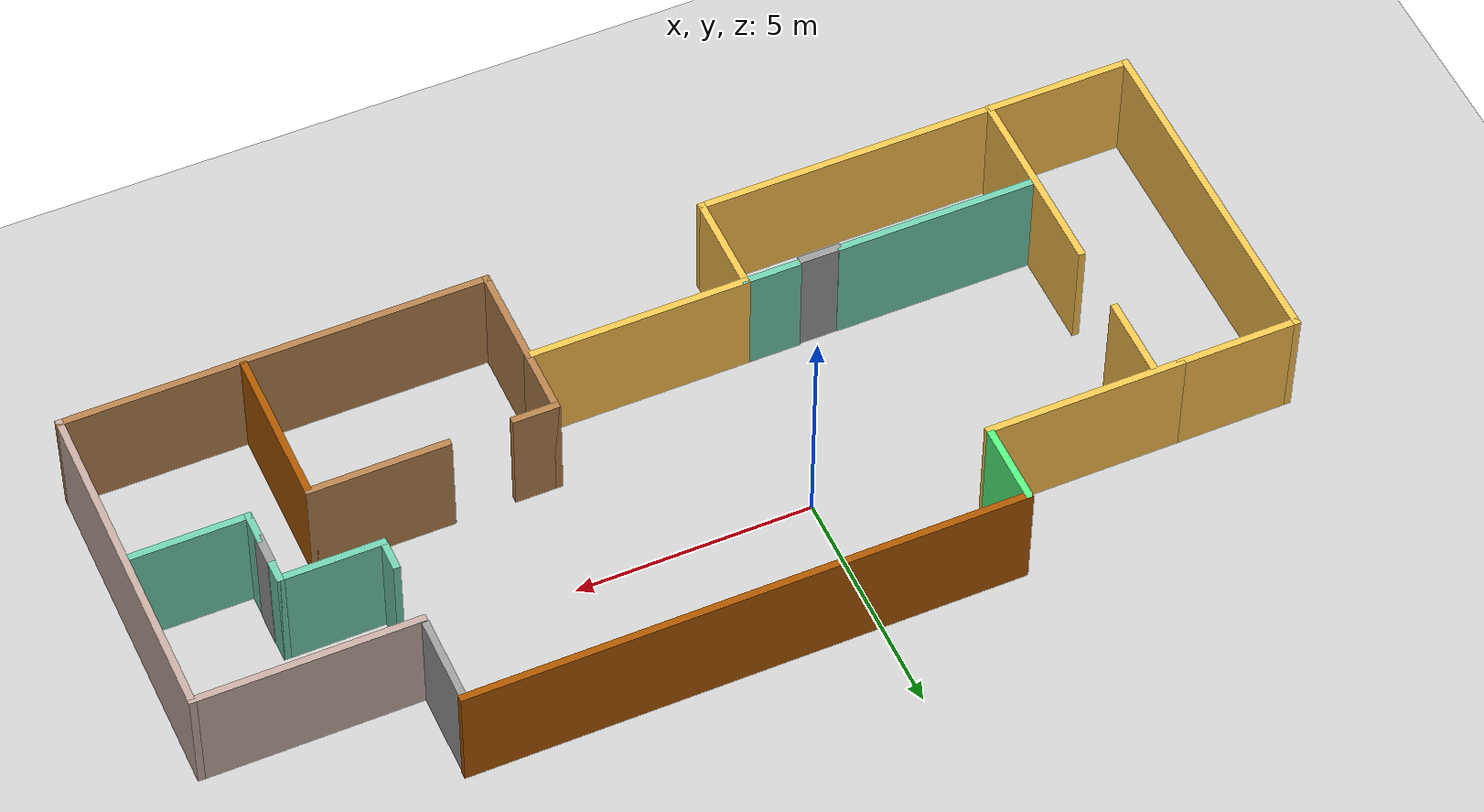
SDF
<sdf version="1.6">
 <world name="default">
  <model name="ground_plane">
   <static>1</static>
   <link name="link">
    <collision name="collision">
     <geometry><plane><normal>0 0 1</normal><size>100 100</size></plane></geometry>
     <surface><friction><ode><mu>100</mu><mu2>50</mu2></ode></friction></surface>
    </collision>
    <visual name="visual">
     <cast_shadows>0</cast_shadows>
     <geometry><plane><normal>0 0 1</normal><size>100 100</size></plane></geometry>
     <material>
      <script><uri>file://media/materials/scripts/gazebo.material</uri><name>Gazebo/Grey</name></script>
     </material>
    </visual>
   </link>
  </model>
  <model name="Building">
   <model name="Udacity_Office">
    <link name="Door_0">
     <pose>-3.67047 -1.60909 0 0 -0 0</pose>
     <visual name="Door_0_Visual">
      <pose>0 0 1.25 0 -0 0</pose>
      <geometry><box><size>0.9 0.17 2.5</size></box></geometry>
      <material>
       <script><uri>file://media/materials/scripts/gazebo.material</uri><name>Gazebo/Grey</name></script>
       <shader type="pixel"/>
       <ambient>0.3 0.3 0.3 1</ambient>
       <diffuse>0.7 0.7 0.7 1</diffuse>
       <specular>0.01 0.01 0.01 1</specular>
       <emissive>0 0 0 1</emissive>
      </material>
     </visual>
     <collision name="Door_0_Collision">
      <pose>0 0 1.25 0 -0 0</pose>
      <geometry><box><size>0.9 0.17 2.5</size></box></geometry>
      <surface>
       <friction>
        <ode><mu>1</mu><mu2>1</mu2><fdir1>0 0 0</fdir1><slip1>0</slip1><slip2>0</slip2></ode>
        <torsional>
         <coefficient>1</coefficient>
         <patch_radius>0</patch_radius>
         <surface_radius>0</surface_radius>
         <use_patch_radius>1</use_patch_radius>
         <ode><slip>0</slip></ode>
        </torsional>
       </friction>
       <bounce><restitution_coefficient>0</restitution_coefficient><threshold>1e+06</threshold></bounce>
       <contact>
        <collide_without_contact>0</collide_without_contact>
        <collide_without_contact_bitmask>1</collide_without_contact_bitmask>
        <collide_bitmask>1</collide_bitmask>
        <ode>
         <soft_cfm>0</soft_cfm>
         <soft_erp>0.2</soft_erp>
         <kp>1e+13</kp>
         <kd>1</kd>
         <max_vel>0.01</max_vel>
         <min_depth>0</min_depth>
        </ode>
        <bullet>
         <split_impulse>1</split_impulse>
         <split_impulse_penetration_threshold>-0.01</split_impulse_penetration_threshold>
         <soft_cfm>0</soft_cfm>
         <soft_erp>0.2</soft_erp>
         <kp>1e+13</kp>
         <kd>1</kd>
        </bullet>
       </contact>
      </surface>
     </collision>
    </link>
    <link name="Door_1">
     <pose>8.90051 0.744202 0 0 0 -1.5708</pose>
     <visual name="Door_1_Visual">
      <pose>0 0 1.25 0 -0 0</pose>
      <geometry><box><size>0.7 0.17 2.5</size></box></geometry>
      <material>
       <script><uri>file://media/materials/scripts/gazebo.material</uri><name>Gazebo/Grey</name></script>
       <shader type="pixel"/>
       <ambient>0.3 0.3 0.3 1</ambient>
       <diffuse>0.7 0.7 0.7 1</diffuse>
       <specular>0.01 0.01 0.01 1</specular>
       <emissive>0 0 0 1</emissive>
      </material>
     </visual>
     <collision name="Door_1_Collision">
      <pose>0 0 1.25 0 -0 0</pose>
      <geometry><box><size>0.7 0.17 2.5</size></box></geometry>
      <surface>
       <friction>
        <ode><mu>1</mu><mu2>1</mu2><fdir1>0 0 0</fdir1><slip1>0</slip1><slip2>0</slip2></ode>
        <torsional>
         <coefficient>1</coefficient>
         <patch_radius>0</patch_radius>
         <surface_radius>0</surface_radius>
         <use_patch_radius>1</use_patch_radius>
         <ode><slip>0</slip></ode>
        </torsional>
       </friction>
       <bounce><restitution_coefficient>0</restitution_coefficient><threshold>1e+06</threshold></bounce>
       <contact>
        <collide_without_contact>0</collide_without_contact>
        <collide_without_contact_bitmask>1</collide_without_contact_bitmask>
        <collide_bitmask>1</collide_bitmask>
        <ode>
         <soft_cfm>0</soft_cfm>
         <soft_erp>0.2</soft_erp>
         <kp>1e+13</kp>
         <kd>1</kd>
         <max_vel>0.01</max_vel>
         <min_depth>0</min_depth>
        </ode>
        <bullet>
         <split_impulse>1</split_impulse>
         <split_impulse_penetration_threshold>-0.01</split_impulse_penetration_threshold>
         <soft_cfm>0</soft_cfm>
         <soft_erp>0.2</soft_erp>
         <kp>1e+13</kp>
         <kd>1</kd>
        </bullet>
       </contact>
      </surface>
     </collision>
    </link>
    <link name="Wall_0">
     <pose>-6.85 3.68078 0 0 -0 0</pose>
     <visual name="Wall_0_Visual">
      <pose>0 0 1.25 0 -0 0</pose>
      <geometry><box><size>4.25 0.15 2.5</size></box></geometry>
      <material>
       <script><uri>file://media/materials/scripts/gazebo.material</uri><name>Gazebo/Grey</name></script>
       <ambient>1 0.764706 0.305882 1</ambient>
       <shader type="pixel"/>
       <diffuse>0.7 0.7 0.7 1</diffuse>
       <specular>0.01 0.01 0.01 1</specular>
       <emissive>0 0 0 1</emissive>
      </material>
      <meta><layer>0</layer></meta>
     </visual>
     <collision name="Wall_0_Collision">
      <pose>0 0 1.25 0 -0 0</pose>
      <geometry><box><size>4.25 0.15 2.5</size></box></geometry>
      <surface>
       <friction>
        <ode><mu>1</mu><mu2>1</mu2><fdir1>0 0 0</fdir1><slip1>0</slip1><slip2>0</slip2></ode>
        <torsional>
         <coefficient>1</coefficient>
         <patch_radius>0</patch_radius>
         <surface_radius>0</surface_radius>
         <use_patch_radius>1</use_patch_radius>
         <ode><slip>0</slip></ode>
        </torsional>
       </friction>
       <bounce><restitution_coefficient>0</restitution_coefficient><threshold>1e+06</threshold></bounce>
       <contact>
        <collide_without_contact>0</collide_without_contact>
        <collide_without_contact_bitmask>1</collide_without_contact_bitmask>
        <collide_bitmask>1</collide_bitmask>
        <ode>
         <soft_cfm>0</soft_cfm>
         <soft_erp>0.2</soft_erp>
         <kp>1e+13</kp>
         <kd>1</kd>
         <max_vel>0.01</max_vel>
         <min_depth>0</min_depth>
        </ode>
        <bullet>
         <split_impulse>1</split_impulse>
         <split_impulse_penetration_threshold>-0.01</split_impulse_penetration_threshold>
         <soft_cfm>0</soft_cfm>
         <soft_erp>0.2</soft_erp>
         <kp>1e+13</kp>
         <kd>1</kd>
        </bullet>
       </contact>
      </surface>
     </collision>
    </link>
    <link name="Wall_1">
     <pose>-4.79999 4.59263 0 0 0 -1.5708</pose>
     <visual name="Wall_1_Visual">
      <pose>0 0 1.25 0 -0 0</pose>
      <geometry><box><size>1.75 0.15 2.5</size></box></geometry>
      <material>
       <script><uri>file://media/materials/scripts/gazebo.material</uri><name>Gazebo/Grey</name></script>
       <ambient>0.333333 1 0.498039 1</ambient>
       <shader type="pixel"/>
       <diffuse>0.7 0.7 0.7 1</diffuse>
       <specular>0.01 0.01 0.01 1</specular>
       <emissive>0 0 0 1</emissive>
      </material>
      <meta><layer>0</layer></meta>
     </visual>
     <collision name="Wall_1_Collision">
      <pose>0 0 1.25 0 -0 0</pose>
      <geometry><box><size>1.75 0.15 2.5</size></box></geometry>
      <surface>
       <friction>
        <ode><mu>1</mu><mu2>1</mu2><fdir1>0 0 0</fdir1><slip1>0</slip1><slip2>0</slip2></ode>
        <torsional>
         <coefficient>1</coefficient>
         <patch_radius>0</patch_radius>
         <surface_radius>0</surface_radius>
         <use_patch_radius>1</use_patch_radius>
         <ode><slip>0</slip></ode>
        </torsional>
       </friction>
       <bounce><restitution_coefficient>0</restitution_coefficient><threshold>1e+06</threshold></bounce>
       <contact>
        <collide_without_contact>0</collide_without_contact>
        <collide_without_contact_bitmask>1</collide_without_contact_bitmask>
        <collide_bitmask>1</collide_bitmask>
        <ode>
         <soft_cfm>0</soft_cfm>
         <soft_erp>0.2</soft_erp>
         <kp>1e+13</kp>
         <kd>1</kd>
         <max_vel>0.01</max_vel>
         <min_depth>0</min_depth>
        </ode>
        <bullet>
         <split_impulse>1</split_impulse>
         <split_impulse_penetration_threshold>-0.01</split_impulse_penetration_threshold>
         <soft_cfm>0</soft_cfm>
         <soft_erp>0.2</soft_erp>
         <kp>1e+13</kp>
         <kd>1</kd>
        </bullet>
       </contact>
      </surface>
     </collision>
    </link>
    <link name="Wall_10">
     <pose>-6.725 -3.66922 0 0 -0 3.14159</pose>
     <visual name="Wall_10_Visual">
      <pose>0 0 1.25 0 -0 0</pose>
      <geometry><box><size>9.5 0.15 2.5</size></box></geometry>
      <material>
       <script><uri>file://media/materials/scripts/gazebo.material</uri><name>Gazebo/Grey</name></script>
       <ambient>1 0.764706 0.305882 1</ambient>
       <shader type="pixel"/>
       <diffuse>0.7 0.7 0.7 1</diffuse>
       <specular>0.01 0.01 0.01 1</specular>
       <emissive>0 0 0 1</emissive>
      </material>
      <meta><layer>0</layer></meta>
     </visual>
     <collision name="Wall_10_Collision">
      <pose>0 0 1.25 0 -0 0</pose>
      <geometry><box><size>9.5 0.15 2.5</size></box></geometry>
      <surface>
       <friction>
        <ode><mu>1</mu><mu2>1</mu2><fdir1>0 0 0</fdir1><slip1>0</slip1><slip2>0</slip2></ode>
        <torsional>
         <coefficient>1</coefficient>
         <patch_radius>0</patch_radius>
         <surface_radius>0</surface_radius>
         <use_patch_radius>1</use_patch_radius>
         <ode><slip>0</slip></ode>
        </torsional>
       </friction>
       <bounce><restitution_coefficient>0</restitution_coefficient><threshold>1e+06</threshold></bounce>
       <contact>
        <collide_without_contact>0</collide_without_contact>
        <collide_without_contact_bitmask>1</collide_without_contact_bitmask>
        <collide_bitmask>1</collide_bitmask>
        <ode>
         <soft_cfm>0</soft_cfm>
         <soft_erp>0.2</soft_erp>
         <kp>1e+13</kp>
         <kd>1</kd>
         <max_vel>0.01</max_vel>
         <min_depth>0</min_depth>
        </ode>
        <bullet>
         <split_impulse>1</split_impulse>
         <split_impulse_penetration_threshold>-0.01</split_impulse_penetration_threshold>
         <soft_cfm>0</soft_cfm>
         <soft_erp>0.2</soft_erp>
         <kp>1e+13</kp>
         <kd>1</kd>
        </bullet>
       </contact>
      </surface>
     </collision>
    </link>
    <link name="Wall_11">
     <pose>-11.4 0.005784 0 0 -0 1.5708</pose>
     <visual name="Wall_11_Visual">
      <pose>0 0 1.25 0 -0 0</pose>
      <geometry><box><size>7.5 0.15 2.5</size></box></geometry>
      <material>
       <script><uri>file://media/materials/scripts/gazebo.material</uri><name>Gazebo/Grey</name></script>
       <ambient>1 0.764706 0.305882 1</ambient>
       <shader type="pixel"/>
       <diffuse>0.7 0.7 0.7 1</diffuse>
       <specular>0.01 0.01 0.01 1</specular>
       <emissive>0 0 0 1</emissive>
      </material>
      <meta><layer>0</layer></meta>
     </visual>
     <collision name="Wall_11_Collision">
      <pose>0 0 1.25 0 -0 0</pose>
      <geometry><box><size>7.5 0.15 2.5</size></box></geometry>
      <surface>
       <friction>
        <ode><mu>1</mu><mu2>1</mu2><fdir1>0 0 0</fdir1><slip1>0</slip1><slip2>0</slip2></ode>
        <torsional>
         <coefficient>1</coefficient>
         <patch_radius>0</patch_radius>
         <surface_radius>0</surface_radius>
         <use_patch_radius>1</use_patch_radius>
         <ode><slip>0</slip></ode>
        </torsional>
       </friction>
       <bounce><restitution_coefficient>0</restitution_coefficient><threshold>1e+06</threshold></bounce>
       <contact>
        <collide_without_contact>0</collide_without_contact>
        <collide_without_contact_bitmask>1</collide_without_contact_bitmask>
        <collide_bitmask>1</collide_bitmask>
        <ode>
         <soft_cfm>0</soft_cfm>
         <soft_erp>0.2</soft_erp>
         <kp>1e+13</kp>
         <kd>1</kd>
         <max_vel>0.01</max_vel>
         <min_depth>0</min_depth>
        </ode>
        <bullet>
         <split_impulse>1</split_impulse>
         <split_impulse_penetration_threshold>-0.01</split_impulse_penetration_threshold>
         <soft_cfm>0</soft_cfm>
         <soft_erp>0.2</soft_erp>
         <kp>1e+13</kp>
         <kd>1</kd>
        </bullet>
       </contact>
      </surface>
     </collision>
    </link>
    <link name="Wall_12">
     <pose>-10.15 3.68078 0 0 -0 0</pose>
     <visual name="Wall_12_Visual">
      <pose>0 0 1.25 0 -0 0</pose>
      <geometry><box><size>2.65 0.15 2.5</size></box></geometry>
      <material>
       <script><uri>file://media/materials/scripts/gazebo.material</uri><name>Gazebo/Grey</name></script>
       <ambient>1 0.764706 0.305882 1</ambient>
       <shader type="pixel"/>
       <diffuse>0.7 0.7 0.7 1</diffuse>
       <specular>0.01 0.01 0.01 1</specular>
       <emissive>0 0 0 1</emissive>
      </material>
      <meta><layer>0</layer></meta>
     </visual>
     <collision name="Wall_12_Collision">
      <pose>0 0 1.25 0 -0 0</pose>
      <geometry><box><size>2.65 0.15 2.5</size></box></geometry>
      <surface>
       <friction>
        <ode><mu>1</mu><mu2>1</mu2><fdir1>0 0 0</fdir1><slip1>0</slip1><slip2>0</slip2></ode>
        <torsional>
         <coefficient>1</coefficient>
         <patch_radius>0</patch_radius>
         <surface_radius>0</surface_radius>
         <use_patch_radius>1</use_patch_radius>
         <ode><slip>0</slip></ode>
        </torsional>
       </friction>
       <bounce><restitution_coefficient>0</restitution_coefficient><threshold>1e+06</threshold></bounce>
       <contact>
        <collide_without_contact>0</collide_without_contact>
        <collide_without_contact_bitmask>1</collide_without_contact_bitmask>
        <collide_bitmask>1</collide_bitmask>
        <ode>
         <soft_cfm>0</soft_cfm>
         <soft_erp>0.2</soft_erp>
         <kp>1e+13</kp>
         <kd>1</kd>
         <max_vel>0.01</max_vel>
         <min_depth>0</min_depth>
        </ode>
        <bullet>
         <split_impulse>1</split_impulse>
         <split_impulse_penetration_threshold>-0.01</split_impulse_penetration_threshold>
         <soft_cfm>0</soft_cfm>
         <soft_erp>0.2</soft_erp>
         <kp>1e+13</kp>
         <kd>1</kd>
        </bullet>
       </contact>
      </surface>
     </collision>
    </link>
    <link name="Wall_19">
     <pose>2.55 -0.894216 0 0 -0 1.5708</pose>
     <visual name="Wall_19_Visual">
      <pose>0 0 1.25 0 -0 0</pose>
      <geometry><box><size>1.5 0.15 2.5</size></box></geometry>
      <material>
       <script><uri>file://media/materials/scripts/gazebo.material</uri><name>Gazebo/Wood</name></script>
       <ambient>1 0.764706 0.305882 1</ambient>
       <shader type="pixel"/>
       <diffuse>1 1 1 1</diffuse>
       <specular>0.2 0.2 0.2 1</specular>
       <emissive>0 0 0 1</emissive>
      </material>
      <meta><layer>0</layer></meta>
     </visual>
     <collision name="Wall_19_Collision">
      <pose>0 0 1.25 0 -0 0</pose>
      <geometry><box><size>1.5 0.15 2.5</size></box></geometry>
      <surface>
       <friction>
        <ode><mu>1</mu><mu2>1</mu2><fdir1>0 0 0</fdir1><slip1>0</slip1><slip2>0</slip2></ode>
        <torsional>
         <coefficient>1</coefficient>
         <patch_radius>0</patch_radius>
         <surface_radius>0</surface_radius>
         <use_patch_radius>1</use_patch_radius>
         <ode><slip>0</slip></ode>
        </torsional>
       </friction>
       <bounce><restitution_coefficient>0</restitution_coefficient><threshold>1e+06</threshold></bounce>
       <contact>
        <collide_without_contact>0</collide_without_contact>
        <collide_without_contact_bitmask>1</collide_without_contact_bitmask>
        <collide_bitmask>1</collide_bitmask>
        <ode>
         <soft_cfm>0</soft_cfm>
         <soft_erp>0.2</soft_erp>
         <kp>1e+13</kp>
         <kd>1</kd>
         <max_vel>0.01</max_vel>
         <min_depth>0</min_depth>
        </ode>
        <bullet>
         <split_impulse>1</split_impulse>
         <split_impulse_penetration_threshold>-0.01</split_impulse_penetration_threshold>
         <soft_cfm>0</soft_cfm>
         <soft_erp>0.2</soft_erp>
         <kp>1e+13</kp>
         <kd>1</kd>
        </bullet>
       </contact>
      </surface>
     </collision>
    </link>
    <link name="Wall_2">
     <pose>1 5.39525 0 0 -0 0</pose>
     <visual name="Wall_2_Visual">
      <pose>0 0 1.25 0 -0 0</pose>
      <geometry><box><size>11.75 0.15 2.5</size></box></geometry>
      <material>
       <script><uri>file://media/materials/scripts/gazebo.material</uri><name>Gazebo/Grey</name></script>
       <ambient>0.666667 0.333333 0 1</ambient>
       <shader type="pixel"/>
       <diffuse>0.7 0.7 0.7 1</diffuse>
       <specular>0.01 0.01 0.01 1</specular>
       <emissive>0 0 0 1</emissive>
      </material>
      <meta><layer>0</layer></meta>
     </visual>
     <collision name="Wall_2_Collision">
      <pose>0 0 1.25 0 -0 0</pose>
      <geometry><box><size>11.75 0.15 2.5</size></box></geometry>
      <surface>
       <friction>
        <ode><mu>1</mu><mu2>1</mu2><fdir1>0 0 0</fdir1><slip1>0</slip1><slip2>0</slip2></ode>
        <torsional>
         <coefficient>1</coefficient>
         <patch_radius>0</patch_radius>
         <surface_radius>0</surface_radius>
         <use_patch_radius>1</use_patch_radius>
         <ode><slip>0</slip></ode>
        </torsional>
       </friction>
       <bounce><restitution_coefficient>0</restitution_coefficient><threshold>1e+06</threshold></bounce>
       <contact>
        <collide_without_contact>0</collide_without_contact>
        <collide_without_contact_bitmask>1</collide_without_contact_bitmask>
        <collide_bitmask>1</collide_bitmask>
        <ode>
         <soft_cfm>0</soft_cfm>
         <soft_erp>0.2</soft_erp>
         <kp>1e+13</kp>
         <kd>1</kd>
         <max_vel>0.01</max_vel>
         <min_depth>0</min_depth>
        </ode>
        <bullet>
         <split_impulse>1</split_impulse>
         <split_impulse_penetration_threshold>-0.01</split_impulse_penetration_threshold>
         <soft_cfm>0</soft_cfm>
         <soft_erp>0.2</soft_erp>
         <kp>1e+13</kp>
         <kd>1</kd>
        </bullet>
       </contact>
      </surface>
     </collision>
    </link>
    <link name="Wall_24">
     <pose>7.65 -1.89422 0 0 0 -1.5708</pose>
     <visual name="Wall_24_Visual">
      <pose>0 0 1.25 0 -0 0</pose>
      <geometry><box><size>3.5 0.15 2.5</size></box></geometry>
      <material>
       <script><uri>file://media/materials/scripts/gazebo.material</uri><name>Gazebo/Grey</name></script>
       <ambient>0.666667 0.333333 0 1</ambient>
       <shader type="pixel"/>
       <diffuse>0.7 0.7 0.7 1</diffuse>
       <specular>0.01 0.01 0.01 1</specular>
       <emissive>0 0 0 1</emissive>
      </material>
      <meta><layer>0</layer></meta>
     </visual>
     <collision name="Wall_24_Collision">
      <pose>0 0 1.25 0 -0 0</pose>
      <geometry><box><size>3.5 0.15 2.5</size></box></geometry>
      <surface>
       <friction>
        <ode><mu>1</mu><mu2>1</mu2><fdir1>0 0 0</fdir1><slip1>0</slip1><slip2>0</slip2></ode>
        <torsional>
         <coefficient>1</coefficient>
         <patch_radius>0</patch_radius>
         <surface_radius>0</surface_radius>
         <use_patch_radius>1</use_patch_radius>
         <ode><slip>0</slip></ode>
        </torsional>
       </friction>
       <bounce><restitution_coefficient>0</restitution_coefficient><threshold>1e+06</threshold></bounce>
       <contact>
        <collide_without_contact>0</collide_without_contact>
        <collide_without_contact_bitmask>1</collide_without_contact_bitmask>
        <collide_bitmask>1</collide_bitmask>
        <ode>
         <soft_cfm>0</soft_cfm>
         <soft_erp>0.2</soft_erp>
         <kp>1e+13</kp>
         <kd>1</kd>
         <max_vel>0.01</max_vel>
         <min_depth>0</min_depth>
        </ode>
        <bullet>
         <split_impulse>1</split_impulse>
         <split_impulse_penetration_threshold>-0.01</split_impulse_penetration_threshold>
         <soft_cfm>0</soft_cfm>
         <soft_erp>0.2</soft_erp>
         <kp>1e+13</kp>
         <kd>1</kd>
        </bullet>
       </contact>
      </surface>
     </collision>
    </link>
    <link name="Wall_26">
     <pose>6.8 1.78078 0 0 0 -1.5708</pose>
     <visual name="Wall_26_Visual">
      <pose>0 0 1.25 0 -0 0</pose>
      <geometry><box><size>0.75 0.15 2.5</size></box></geometry>
      <material>
       <script><uri>file://media/materials/scripts/gazebo.material</uri><name>Gazebo/Grey</name></script>
       <ambient>0.435294 0.796078 0.67451 1</ambient>
       <shader type="pixel"/>
       <diffuse>0.7 0.7 0.7 1</diffuse>
       <specular>0.01 0.01 0.01 1</specular>
       <emissive>0 0 0 1</emissive>
      </material>
      <meta><layer>0</layer></meta>
     </visual>
     <collision name="Wall_26_Collision">
      <pose>0 0 1.25 0 -0 0</pose>
      <geometry><box><size>0.75 0.15 2.5</size></box></geometry>
      <surface>
       <friction>
        <ode><mu>1</mu><mu2>1</mu2><fdir1>0 0 0</fdir1><slip1>0</slip1><slip2>0</slip2></ode>
        <torsional>
         <coefficient>1</coefficient>
         <patch_radius>0</patch_radius>
         <surface_radius>0</surface_radius>
         <use_patch_radius>1</use_patch_radius>
         <ode><slip>0</slip></ode>
        </torsional>
       </friction>
       <bounce><restitution_coefficient>0</restitution_coefficient><threshold>1e+06</threshold></bounce>
       <contact>
        <collide_without_contact>0</collide_without_contact>
        <collide_without_contact_bitmask>1</collide_without_contact_bitmask>
        <collide_bitmask>1</collide_bitmask>
        <ode>
         <soft_cfm>0</soft_cfm>
         <soft_erp>0.2</soft_erp>
         <kp>1e+13</kp>
         <kd>1</kd>
         <max_vel>0.01</max_vel>
         <min_depth>0</min_depth>
        </ode>
        <bullet>
         <split_impulse>1</split_impulse>
         <split_impulse_penetration_threshold>-0.01</split_impulse_penetration_threshold>
         <soft_cfm>0</soft_cfm>
         <soft_erp>0.2</soft_erp>
         <kp>1e+13</kp>
         <kd>1</kd>
        </bullet>
       </contact>
      </surface>
     </collision>
    </link>
    <link name="Wall_27">
     <pose>7.85 1.48078 0 0 -0 0</pose>
     <visual name="Wall_27_Visual">
      <pose>0 0 1.25 0 -0 0</pose>
      <geometry><box><size>2.25 0.15 2.5</size></box></geometry>
      <material>
       <script><uri>file://media/materials/scripts/gazebo.material</uri><name>Gazebo/Grey</name></script>
       <ambient>0.435294 0.796078 0.67451 1</ambient>
       <shader type="pixel"/>
       <diffuse>0.7 0.7 0.7 1</diffuse>
       <specular>0.01 0.01 0.01 1</specular>
       <emissive>0 0 0 1</emissive>
      </material>
      <meta><layer>0</layer></meta>
     </visual>
     <collision name="Wall_27_Collision">
      <pose>0 0 1.25 0 -0 0</pose>
      <geometry><box><size>2.25 0.15 2.5</size></box></geometry>
      <surface>
       <friction>
        <ode><mu>1</mu><mu2>1</mu2><fdir1>0 0 0</fdir1><slip1>0</slip1><slip2>0</slip2></ode>
        <torsional>
         <coefficient>1</coefficient>
         <patch_radius>0</patch_radius>
         <surface_radius>0</surface_radius>
         <use_patch_radius>1</use_patch_radius>
         <ode><slip>0</slip></ode>
        </torsional>
       </friction>
       <bounce><restitution_coefficient>0</restitution_coefficient><threshold>1e+06</threshold></bounce>
       <contact>
        <collide_without_contact>0</collide_without_contact>
        <collide_without_contact_bitmask>1</collide_without_contact_bitmask>
        <collide_bitmask>1</collide_bitmask>
        <ode>
         <soft_cfm>0</soft_cfm>
         <soft_erp>0.2</soft_erp>
         <kp>1e+13</kp>
         <kd>1</kd>
         <max_vel>0.01</max_vel>
         <min_depth>0</min_depth>
        </ode>
        <bullet>
         <split_impulse>1</split_impulse>
         <split_impulse_penetration_threshold>-0.01</split_impulse_penetration_threshold>
         <soft_cfm>0</soft_cfm>
         <soft_erp>0.2</soft_erp>
         <kp>1e+13</kp>
         <kd>1</kd>
        </bullet>
       </contact>
      </surface>
     </collision>
    </link>
    <link name="Wall_29">
     <pose>10.075 -0.119216 0 0 -0 0</pose>
     <visual name="Wall_29_Visual">
      <pose>0 0 1.25 0 -0 0</pose>
      <geometry><box><size>2.5 0.15 2.5</size></box></geometry>
      <material>
       <script><uri>file://media/materials/scripts/gazebo.material</uri><name>Gazebo/Grey</name></script>
       <ambient>0.435294 0.796078 0.67451 1</ambient>
       <shader type="pixel"/>
       <diffuse>0.7 0.7 0.7 1</diffuse>
       <specular>0.01 0.01 0.01 1</specular>
       <emissive>0 0 0 1</emissive>
      </material>
      <meta><layer>0</layer></meta>
     </visual>
     <collision name="Wall_29_Collision">
      <pose>0 0 1.25 0 -0 0</pose>
      <geometry><box><size>2.5 0.15 2.5</size></box></geometry>
      <surface>
       <friction>
        <ode><mu>1</mu><mu2>1</mu2><fdir1>0 0 0</fdir1><slip1>0</slip1><slip2>0</slip2></ode>
        <torsional>
         <coefficient>1</coefficient>
         <patch_radius>0</patch_radius>
         <surface_radius>0</surface_radius>
         <use_patch_radius>1</use_patch_radius>
         <ode><slip>0</slip></ode>
        </torsional>
       </friction>
       <bounce><restitution_coefficient>0</restitution_coefficient><threshold>1e+06</threshold></bounce>
       <contact>
        <collide_without_contact>0</collide_without_contact>
        <collide_without_contact_bitmask>1</collide_without_contact_bitmask>
        <collide_bitmask>1</collide_bitmask>
        <ode>
         <soft_cfm>0</soft_cfm>
         <soft_erp>0.2</soft_erp>
         <kp>1e+13</kp>
         <kd>1</kd>
         <max_vel>0.01</max_vel>
         <min_depth>0</min_depth>
        </ode>
        <bullet>
         <split_impulse>1</split_impulse>
         <split_impulse_penetration_threshold>-0.01</split_impulse_penetration_threshold>
         <soft_cfm>0</soft_cfm>
         <soft_erp>0.2</soft_erp>
         <kp>1e+13</kp>
         <kd>1</kd>
        </bullet>
       </contact>
      </surface>
     </collision>
    </link>
    <link name="Wall_3">
     <pose>6.78568 4.42312 0 0 -0 1.5708</pose>
     <inertial>
      <mass>1</mass>
      <inertia><ixx>1</ixx><ixy>0</ixy><ixz>0</ixz><iyy>1</iyy><iyz>0</iyz><izz>1</izz></inertia>
     </inertial>
     <visual name="Wall_3_Visual">
      <pose>0 0 1.25 0 -0 0</pose>
      <geometry><box><size>1.8 0.15 2.5</size></box></geometry>
      <material>
       <script><uri>file://media/materials/scripts/gazebo.material</uri><name>Gazebo/Grey</name></script>
       <ambient>1 1 1 1</ambient>
       <shader type="pixel"><normal_map>__default__</normal_map></shader>
       <diffuse>0.7 0.7 0.7 1</diffuse>
       <specular>0.01 0.01 0.01 1</specular>
       <emissive>0 0 0 1</emissive>
      </material>
      <meta><layer>0</layer></meta>
     </visual>
     <collision name="Wall_3_Collision">
      <pose>0 0 1.25 0 -0 0</pose>
      <geometry><box><size>1.5 0.15 2.5</size></box></geometry>
      <surface>
       <friction>
        <ode><mu>1</mu><mu2>1</mu2><fdir1>0 0 0</fdir1><slip1>0</slip1><slip2>0</slip2></ode>
        <torsional>
         <coefficient>1</coefficient>
         <patch_radius>0</patch_radius>
         <surface_radius>0</surface_radius>
         <use_patch_radius>1</use_patch_radius>
         <ode><slip>0</slip></ode>
        </torsional>
       </friction>
       <bounce><restitution_coefficient>0</restitution_coefficient><threshold>1e+06</threshold></bounce>
       <contact>
        <collide_without_contact>0</collide_without_contact>
        <collide_without_contact_bitmask>1</collide_without_contact_bitmask>
        <collide_bitmask>1</collide_bitmask>
        <ode>
         <soft_cfm>0</soft_cfm>
         <soft_erp>0.2</soft_erp>
         <kp>1e+13</kp>
         <kd>1</kd>
         <max_vel>0.01</max_vel>
         <min_depth>0</min_depth>
        </ode>
        <bullet>
         <split_impulse>1</split_impulse>
         <split_impulse_penetration_threshold>-0.01</split_impulse_penetration_threshold>
         <soft_cfm>0</soft_cfm>
         <soft_erp>0.2</soft_erp>
         <kp>1e+13</kp>
         <kd>1</kd>
        </bullet>
       </contact>
      </surface>
     </collision>
    </link>
    <link name="Wall_38">
     <pose>-2.6 -1.56922 0 0 -0 3.14159</pose>
     <visual name="Wall_38_Visual">
      <pose>0 0 1.25 0 -0 0</pose>
      <geometry><box><size>1.25 0.15 2.5</size></box></geometry>
      <material>
       <script><uri>file://media/materials/scripts/gazebo.material</uri><name>Gazebo/Grey</name></script>
       <ambient>0.435294 0.796078 0.67451 1</ambient>
       <shader type="pixel"/>
       <diffuse>0.7 0.7 0.7 1</diffuse>
       <specular>0.01 0.01 0.01 1</specular>
       <emissive>0 0 0 1</emissive>
      </material>
      <meta><layer>0</layer></meta>
     </visual>
     <collision name="Wall_38_Collision">
      <pose>0 0 1.25 0 -0 0</pose>
      <geometry><box><size>1.25 0.15 2.5</size></box></geometry>
      <surface>
       <friction>
        <ode><mu>1</mu><mu2>1</mu2><fdir1>0 0 0</fdir1><slip1>0</slip1><slip2>0</slip2></ode>
        <torsional>
         <coefficient>1</coefficient>
         <patch_radius>0</patch_radius>
         <surface_radius>0</surface_radius>
         <use_patch_radius>1</use_patch_radius>
         <ode><slip>0</slip></ode>
        </torsional>
       </friction>
       <bounce><restitution_coefficient>0</restitution_coefficient><threshold>1e+06</threshold></bounce>
       <contact>
        <collide_without_contact>0</collide_without_contact>
        <collide_without_contact_bitmask>1</collide_without_contact_bitmask>
        <collide_bitmask>1</collide_bitmask>
        <ode>
         <soft_cfm>0</soft_cfm>
         <soft_erp>0.2</soft_erp>
         <kp>1e+13</kp>
         <kd>1</kd>
         <max_vel>0.01</max_vel>
         <min_depth>0</min_depth>
        </ode>
        <bullet>
         <split_impulse>1</split_impulse>
         <split_impulse_penetration_threshold>-0.01</split_impulse_penetration_threshold>
         <soft_cfm>0</soft_cfm>
         <soft_erp>0.2</soft_erp>
         <kp>1e+13</kp>
         <kd>1</kd>
        </bullet>
       </contact>
      </surface>
     </collision>
    </link>
    <link name="Wall_4">
     <pose>9.1 3.43078 0 0 -0 0</pose>
     <visual name="Wall_4_Visual">
      <pose>0 0 1.25 0 -0 0</pose>
      <geometry><box><size>4.75 0.15 2.5</size></box></geometry>
      <material>
       <script><uri>file://media/materials/scripts/gazebo.material</uri><name>Gazebo/Grey</name></script>
       <ambient>0.760784 0.662745 0.627451 1</ambient>
       <shader type="pixel"/>
       <diffuse>0.7 0.7 0.7 1</diffuse>
       <specular>0.01 0.01 0.01 1</specular>
       <emissive>0 0 0 1</emissive>
      </material>
      <meta><layer>0</layer></meta>
     </visual>
     <collision name="Wall_4_Collision">
      <pose>0 0 1.25 0 -0 0</pose>
      <geometry><box><size>4.75 0.15 2.5</size></box></geometry>
      <surface>
       <friction>
        <ode><mu>1</mu><mu2>1</mu2><fdir1>0 0 0</fdir1><slip1>0</slip1><slip2>0</slip2></ode>
        <torsional>
         <coefficient>1</coefficient>
         <patch_radius>0</patch_radius>
         <surface_radius>0</surface_radius>
         <use_patch_radius>1</use_patch_radius>
         <ode><slip>0</slip></ode>
        </torsional>
       </friction>
       <bounce><restitution_coefficient>0</restitution_coefficient><threshold>1e+06</threshold></bounce>
       <contact>
        <collide_without_contact>0</collide_without_contact>
        <collide_without_contact_bitmask>1</collide_without_contact_bitmask>
        <collide_bitmask>1</collide_bitmask>
        <ode>
         <soft_cfm>0</soft_cfm>
         <soft_erp>0.2</soft_erp>
         <kp>1e+13</kp>
         <kd>1</kd>
         <max_vel>0.01</max_vel>
         <min_depth>0</min_depth>
        </ode>
        <bullet>
         <split_impulse>1</split_impulse>
         <split_impulse_penetration_threshold>-0.01</split_impulse_penetration_threshold>
         <soft_cfm>0</soft_cfm>
         <soft_erp>0.2</soft_erp>
         <kp>1e+13</kp>
         <kd>1</kd>
        </bullet>
       </contact>
      </surface>
     </collision>
    </link>
    <link name="Wall_40">
     <pose>-6.16297 -1.58897 0 0 -0 3.14159</pose>
     <visual name="Wall_40_Visual">
      <pose>0 0 1.25 0 -0 0</pose>
      <geometry><box><size>4.25 0.15 2.5</size></box></geometry>
      <material>
       <script><uri>file://media/materials/scripts/gazebo.material</uri><name>Gazebo/Grey</name></script>
       <ambient>0.435294 0.796078 0.67451 1</ambient>
       <shader type="pixel"/>
       <diffuse>0.7 0.7 0.7 1</diffuse>
       <specular>0.01 0.01 0.01 1</specular>
       <emissive>0 0 0 1</emissive>
      </material>
      <meta><layer>0</layer></meta>
     </visual>
     <collision name="Wall_40_Collision">
      <pose>0 0 1.25 0 -0 0</pose>
      <geometry><box><size>4.25 0.15 2.5</size></box></geometry>
      <surface>
       <friction>
        <ode><mu>1</mu><mu2>1</mu2><fdir1>0 0 0</fdir1><slip1>0</slip1><slip2>0</slip2></ode>
        <torsional>
         <coefficient>1</coefficient>
         <patch_radius>0</patch_radius>
         <surface_radius>0</surface_radius>
         <use_patch_radius>1</use_patch_radius>
         <ode><slip>0</slip></ode>
        </torsional>
       </friction>
       <bounce><restitution_coefficient>0</restitution_coefficient><threshold>1e+06</threshold></bounce>
       <contact>
        <collide_without_contact>0</collide_without_contact>
        <collide_without_contact_bitmask>1</collide_without_contact_bitmask>
        <collide_bitmask>1</collide_bitmask>
        <ode>
         <soft_cfm>0</soft_cfm>
         <soft_erp>0.2</soft_erp>
         <kp>1e+13</kp>
         <kd>1</kd>
         <max_vel>0.01</max_vel>
         <min_depth>0</min_depth>
        </ode>
        <bullet>
         <split_impulse>1</split_impulse>
         <split_impulse_penetration_threshold>-0.01</split_impulse_penetration_threshold>
         <soft_cfm>0</soft_cfm>
         <soft_erp>0.2</soft_erp>
         <kp>1e+13</kp>
         <kd>1</kd>
        </bullet>
       </contact>
      </surface>
     </collision>
    </link>
    <link name="Wall_43">
     <pose>2.975 -0.219216 0 0 -0 0</pose>
     <visual name="Wall_43_Visual">
      <pose>0 0 1.25 0 -0 0</pose>
      <geometry><box><size>1 0.15 2.5</size></box></geometry>
      <material>
       <script><uri>file://media/materials/scripts/gazebo.material</uri><name>Gazebo/Wood</name></script>
       <ambient>1 1 1 1</ambient>
       <shader type="pixel"/>
       <diffuse>1 1 1 1</diffuse>
       <specular>0.2 0.2 0.2 1</specular>
       <emissive>0 0 0 1</emissive>
      </material>
      <meta><layer>0</layer></meta>
     </visual>
     <collision name="Wall_43_Collision">
      <pose>0 0 1.25 0 -0 0</pose>
      <geometry><box><size>1 0.15 2.5</size></box></geometry>
      <surface>
       <friction>
        <ode><mu>1</mu><mu2>1</mu2><fdir1>0 0 0</fdir1><slip1>0</slip1><slip2>0</slip2></ode>
        <torsional>
         <coefficient>1</coefficient>
         <patch_radius>0</patch_radius>
         <surface_radius>0</surface_radius>
         <use_patch_radius>1</use_patch_radius>
         <ode><slip>0</slip></ode>
        </torsional>
       </friction>
       <bounce><restitution_coefficient>0</restitution_coefficient><threshold>1e+06</threshold></bounce>
       <contact>
        <collide_without_contact>0</collide_without_contact>
        <collide_without_contact_bitmask>1</collide_without_contact_bitmask>
        <collide_bitmask>1</collide_bitmask>
        <ode>
         <soft_cfm>0</soft_cfm>
         <soft_erp>0.2</soft_erp>
         <kp>1e+13</kp>
         <kd>1</kd>
         <max_vel>0.01</max_vel>
         <min_depth>0</min_depth>
        </ode>
        <bullet>
         <split_impulse>1</split_impulse>
         <split_impulse_penetration_threshold>-0.01</split_impulse_penetration_threshold>
         <soft_cfm>0</soft_cfm>
         <soft_erp>0.2</soft_erp>
         <kp>1e+13</kp>
         <kd>1</kd>
        </bullet>
       </contact>
      </surface>
     </collision>
    </link>
    <link name="Wall_46">
     <pose>6.225 -0.219216 0 0 -0 3.14159</pose>
     <visual name="Wall_46_Visual">
      <pose>0 0 1.25 0 -0 0</pose>
      <geometry><box><size>3 0.15 2.5</size></box></geometry>
      <material>
       <script><uri>file://media/materials/scripts/gazebo.material</uri><name>Gazebo/Wood</name></script>
       <ambient>1 1 1 1</ambient>
       <shader type="pixel"/>
       <diffuse>1 1 1 1</diffuse>
       <specular>0.2 0.2 0.2 1</specular>
       <emissive>0 0 0 1</emissive>
      </material>
      <meta><layer>0</layer></meta>
     </visual>
     <collision name="Wall_46_Collision">
      <pose>0 0 1.25 0 -0 0</pose>
      <geometry><box><size>3 0.15 2.5</size></box></geometry>
      <surface>
       <friction>
        <ode><mu>1</mu><mu2>1</mu2><fdir1>0 0 0</fdir1><slip1>0</slip1><slip2>0</slip2></ode>
        <torsional>
         <coefficient>1</coefficient>
         <patch_radius>0</patch_radius>
         <surface_radius>0</surface_radius>
         <use_patch_radius>1</use_patch_radius>
         <ode><slip>0</slip></ode>
        </torsional>
       </friction>
       <bounce><restitution_coefficient>0</restitution_coefficient><threshold>1e+06</threshold></bounce>
       <contact>
        <collide_without_contact>0</collide_without_contact>
        <collide_without_contact_bitmask>1</collide_without_contact_bitmask>
        <collide_bitmask>1</collide_bitmask>
        <ode>
         <soft_cfm>0</soft_cfm>
         <soft_erp>0.2</soft_erp>
         <kp>1e+13</kp>
         <kd>1</kd>
         <max_vel>0.01</max_vel>
         <min_depth>0</min_depth>
        </ode>
        <bullet>
         <split_impulse>1</split_impulse>
         <split_impulse_penetration_threshold>-0.01</split_impulse_penetration_threshold>
         <soft_cfm>0</soft_cfm>
         <soft_erp>0.2</soft_erp>
         <kp>1e+13</kp>
         <kd>1</kd>
        </bullet>
       </contact>
      </surface>
     </collision>
    </link>
    <link name="Wall_48">
     <pose>-8.35693 -1.63078 0 0 -0 1.5708</pose>
     <visual name="Wall_48_Visual">
      <pose>0 0 1.25 0 -0 0</pose>
      <geometry><box><size>4.25 0.15 2.5</size></box></geometry>
      <material>
       <script><uri>file://media/materials/scripts/gazebo.material</uri><name>Gazebo/Grey</name></script>
       <ambient>1 0.764706 0.305882 1</ambient>
       <shader type="pixel"/>
       <diffuse>0.7 0.7 0.7 1</diffuse>
       <specular>0.01 0.01 0.01 1</specular>
       <emissive>0 0 0 1</emissive>
      </material>
      <meta><layer>0</layer></meta>
     </visual>
     <collision name="Wall_48_Collision">
      <pose>0 0 1.25 0 -0 0</pose>
      <geometry><box><size>4.25 0.15 2.5</size></box></geometry>
      <surface>
       <friction>
        <ode><mu>1</mu><mu2>1</mu2><fdir1>0 0 0</fdir1><slip1>0</slip1><slip2>0</slip2></ode>
        <torsional>
         <coefficient>1</coefficient>
         <patch_radius>0</patch_radius>
         <surface_radius>0</surface_radius>
         <use_patch_radius>1</use_patch_radius>
         <ode><slip>0</slip></ode>
        </torsional>
       </friction>
       <bounce><restitution_coefficient>0</restitution_coefficient><threshold>1e+06</threshold></bounce>
       <contact>
        <collide_without_contact>0</collide_without_contact>
        <collide_without_contact_bitmask>1</collide_without_contact_bitmask>
        <collide_bitmask>1</collide_bitmask>
        <ode>
         <soft_cfm>0</soft_cfm>
         <soft_erp>0.2</soft_erp>
         <kp>1e+13</kp>
         <kd>1</kd>
         <max_vel>0.01</max_vel>
         <min_depth>0</min_depth>
        </ode>
        <bullet>
         <split_impulse>1</split_impulse>
         <split_impulse_penetration_threshold>-0.01</split_impulse_penetration_threshold>
         <soft_cfm>0</soft_cfm>
         <soft_erp>0.2</soft_erp>
         <kp>1e+13</kp>
         <kd>1</kd>
        </bullet>
       </contact>
      </surface>
     </collision>
    </link>
    <link name="Wall_5">
     <pose>11.4 -0.119216 0 0 0 -1.5708</pose>
     <visual name="Wall_5_Visual">
      <pose>0 0 1.25 0 -0 0</pose>
      <geometry><box><size>7.25 0.15 2.5</size></box></geometry>
      <material>
       <script><uri>file://media/materials/scripts/gazebo.material</uri><name>Gazebo/Grey</name></script>
       <ambient>0.760784 0.662745 0.627451 1</ambient>
       <shader type="pixel"/>
       <diffuse>0.7 0.7 0.7 1</diffuse>
       <specular>0.01 0.01 0.01 1</specular>
       <emissive>0 0 0 1</emissive>
      </material>
      <meta><layer>0</layer></meta>
     </visual>
     <collision name="Wall_5_Collision">
      <pose>0 0 1.25 0 -0 0</pose>
      <geometry><box><size>7.25 0.15 2.5</size></box></geometry>
      <surface>
       <friction>
        <ode><mu>1</mu><mu2>1</mu2><fdir1>0 0 0</fdir1><slip1>0</slip1><slip2>0</slip2></ode>
        <torsional>
         <coefficient>1</coefficient>
         <patch_radius>0</patch_radius>
         <surface_radius>0</surface_radius>
         <use_patch_radius>1</use_patch_radius>
         <ode><slip>0</slip></ode>
        </torsional>
       </friction>
       <bounce><restitution_coefficient>0</restitution_coefficient><threshold>1e+06</threshold></bounce>
       <contact>
        <collide_without_contact>0</collide_without_contact>
        <collide_without_contact_bitmask>1</collide_without_contact_bitmask>
        <collide_bitmask>1</collide_bitmask>
        <ode>
         <soft_cfm>0</soft_cfm>
         <soft_erp>0.2</soft_erp>
         <kp>1e+13</kp>
         <kd>1</kd>
         <max_vel>0.01</max_vel>
         <min_depth>0</min_depth>
        </ode>
        <bullet>
         <split_impulse>1</split_impulse>
         <split_impulse_penetration_threshold>-0.01</split_impulse_penetration_threshold>
         <soft_cfm>0</soft_cfm>
         <soft_erp>0.2</soft_erp>
         <kp>1e+13</kp>
         <kd>1</kd>
        </bullet>
       </contact>
      </surface>
     </collision>
    </link>
    <link name="Wall_50">
     <pose>-8.35693 2.75102 0 0 -0 1.5708</pose>
     <visual name="Wall_50_Visual">
      <pose>0 0 1.25 0 -0 0</pose>
      <geometry><box><size>1.75 0.15 2.5</size></box></geometry>
      <material>
       <script><uri>file://media/materials/scripts/gazebo.material</uri><name>Gazebo/Grey</name></script>
       <ambient>1 0.764706 0.305882 1</ambient>
       <shader type="pixel"/>
       <diffuse>0.7 0.7 0.7 1</diffuse>
       <specular>0.01 0.01 0.01 1</specular>
       <emissive>0 0 0 1</emissive>
      </material>
      <meta><layer>0</layer></meta>
     </visual>
     <collision name="Wall_50_Collision">
      <pose>0 0 1.25 0 -0 0</pose>
      <geometry><box><size>1.75 0.15 2.5</size></box></geometry>
      <surface>
       <friction>
        <ode><mu>1</mu><mu2>1</mu2><fdir1>0 0 0</fdir1><slip1>0</slip1><slip2>0</slip2></ode>
        <torsional>
         <coefficient>1</coefficient>
         <patch_radius>0</patch_radius>
         <surface_radius>0</surface_radius>
         <use_patch_radius>1</use_patch_radius>
         <ode><slip>0</slip></ode>
        </torsional>
       </friction>
       <bounce><restitution_coefficient>0</restitution_coefficient><threshold>1e+06</threshold></bounce>
       <contact>
        <collide_without_contact>0</collide_without_contact>
        <collide_without_contact_bitmask>1</collide_without_contact_bitmask>
        <collide_bitmask>1</collide_bitmask>
        <ode>
         <soft_cfm>0</soft_cfm>
         <soft_erp>0.2</soft_erp>
         <kp>1e+13</kp>
         <kd>1</kd>
         <max_vel>0.01</max_vel>
         <min_depth>0</min_depth>
        </ode>
        <bullet>
         <split_impulse>1</split_impulse>
         <split_impulse_penetration_threshold>-0.01</split_impulse_penetration_threshold>
         <soft_cfm>0</soft_cfm>
         <soft_erp>0.2</soft_erp>
         <kp>1e+13</kp>
         <kd>1</kd>
        </bullet>
       </contact>
      </surface>
     </collision>
    </link>
    <link name="Wall_52">
     <pose>8.9 1.30578 0 0 0 -1.5708</pose>
     <visual name="Wall_52_Visual">
      <pose>0 0 1.25 0 -0 0</pose>
      <geometry><box><size>0.5 0.15 2.5</size></box></geometry>
      <material>
       <script><uri>file://media/materials/scripts/gazebo.material</uri><name>Gazebo/Grey</name></script>
       <ambient>0.435294 0.796078 0.67451 1</ambient>
       <shader type="pixel"/>
       <diffuse>0.7 0.7 0.7 1</diffuse>
       <specular>0.01 0.01 0.01 1</specular>
       <emissive>0 0 0 1</emissive>
      </material>
      <meta><layer>0</layer></meta>
     </visual>
     <collision name="Wall_52_Collision">
      <pose>0 0 1.25 0 -0 0</pose>
      <geometry><box><size>0.5 0.15 2.5</size></box></geometry>
      <surface>
       <friction>
        <ode><mu>1</mu><mu2>1</mu2><fdir1>0 0 0</fdir1><slip1>0</slip1><slip2>0</slip2></ode>
        <torsional>
         <coefficient>1</coefficient>
         <patch_radius>0</patch_radius>
         <surface_radius>0</surface_radius>
         <use_patch_radius>1</use_patch_radius>
         <ode><slip>0</slip></ode>
        </torsional>
       </friction>
       <bounce><restitution_coefficient>0</restitution_coefficient><threshold>1e+06</threshold></bounce>
       <contact>
        <collide_without_contact>0</collide_without_contact>
        <collide_without_contact_bitmask>1</collide_without_contact_bitmask>
        <collide_bitmask>1</collide_bitmask>
        <ode>
         <soft_cfm>0</soft_cfm>
         <soft_erp>0.2</soft_erp>
         <kp>1e+13</kp>
         <kd>1</kd>
         <max_vel>0.01</max_vel>
         <min_depth>0</min_depth>
        </ode>
        <bullet>
         <split_impulse>1</split_impulse>
         <split_impulse_penetration_threshold>-0.01</split_impulse_penetration_threshold>
         <soft_cfm>0</soft_cfm>
         <soft_erp>0.2</soft_erp>
         <kp>1e+13</kp>
         <kd>1</kd>
        </bullet>
       </contact>
      </surface>
     </collision>
    </link>
    <link name="Wall_54">
     <pose>8.9 0.180784 0 0 -0 1.5708</pose>
     <visual name="Wall_54_Visual">
      <pose>0 0 1.25 0 -0 0</pose>
      <geometry><box><size>0.75 0.15 2.5</size></box></geometry>
      <material>
       <script><uri>file://media/materials/scripts/gazebo.material</uri><name>Gazebo/Grey</name></script>
       <ambient>0.435294 0.796078 0.67451 1</ambient>
       <shader type="pixel"/>
       <diffuse>0.7 0.7 0.7 1</diffuse>
       <specular>0.01 0.01 0.01 1</specular>
       <emissive>0 0 0 1</emissive>
      </material>
      <meta><layer>0</layer></meta>
     </visual>
     <collision name="Wall_54_Collision">
      <pose>0 0 1.25 0 -0 0</pose>
      <geometry><box><size>0.75 0.15 2.5</size></box></geometry>
      <surface>
       <friction>
        <ode><mu>1</mu><mu2>1</mu2><fdir1>0 0 0</fdir1><slip1>0</slip1><slip2>0</slip2></ode>
        <torsional>
         <coefficient>1</coefficient>
         <patch_radius>0</patch_radius>
         <surface_radius>0</surface_radius>
         <use_patch_radius>1</use_patch_radius>
         <ode><slip>0</slip></ode>
        </torsional>
       </friction>
       <bounce><restitution_coefficient>0</restitution_coefficient><threshold>1e+06</threshold></bounce>
       <contact>
        <collide_without_contact>0</collide_without_contact>
        <collide_without_contact_bitmask>1</collide_without_contact_bitmask>
        <collide_bitmask>1</collide_bitmask>
        <ode>
         <soft_cfm>0</soft_cfm>
         <soft_erp>0.2</soft_erp>
         <kp>1e+13</kp>
         <kd>1</kd>
         <max_vel>0.01</max_vel>
         <min_depth>0</min_depth>
        </ode>
        <bullet>
         <split_impulse>1</split_impulse>
         <split_impulse_penetration_threshold>-0.01</split_impulse_penetration_threshold>
         <soft_cfm>0</soft_cfm>
         <soft_erp>0.2</soft_erp>
         <kp>1e+13</kp>
         <kd>1</kd>
        </bullet>
       </contact>
      </surface>
     </collision>
    </link>
    <link name="Wall_6">
     <pose>6.975 -3.66922 0 0 -0 3.14159</pose>
     <visual name="Wall_6_Visual">
      <pose>0 0 1.25 0 -0 0</pose>
      <geometry><box><size>9 0.15 2.5</size></box></geometry>
      <material>
       <script><uri>file://media/materials/scripts/gazebo.material</uri><name>Gazebo/Wood</name></script>
       <ambient>0.760784 0.662745 0.627451 1</ambient>
       <shader type="pixel"/>
       <diffuse>1 1 1 1</diffuse>
       <specular>0.2 0.2 0.2 1</specular>
       <emissive>0 0 0 1</emissive>
      </material>
      <meta><layer>0</layer></meta>
     </visual>
     <collision name="Wall_6_Collision">
      <pose>0 0 1.25 0 -0 0</pose>
      <geometry><box><size>9 0.15 2.5</size></box></geometry>
      <surface>
       <friction>
        <ode><mu>1</mu><mu2>1</mu2><fdir1>0 0 0</fdir1><slip1>0</slip1><slip2>0</slip2></ode>
        <torsional>
         <coefficient>1</coefficient>
         <patch_radius>0</patch_radius>
         <surface_radius>0</surface_radius>
         <use_patch_radius>1</use_patch_radius>
         <ode><slip>0</slip></ode>
        </torsional>
       </friction>
       <bounce><restitution_coefficient>0</restitution_coefficient><threshold>1e+06</threshold></bounce>
       <contact>
        <collide_without_contact>0</collide_without_contact>
        <collide_without_contact_bitmask>1</collide_without_contact_bitmask>
        <collide_bitmask>1</collide_bitmask>
        <ode>
         <soft_cfm>0</soft_cfm>
         <soft_erp>0.2</soft_erp>
         <kp>1e+13</kp>
         <kd>1</kd>
         <max_vel>0.01</max_vel>
         <min_depth>0</min_depth>
        </ode>
        <bullet>
         <split_impulse>1</split_impulse>
         <split_impulse_penetration_threshold>-0.01</split_impulse_penetration_threshold>
         <soft_cfm>0</soft_cfm>
         <soft_erp>0.2</soft_erp>
         <kp>1e+13</kp>
         <kd>1</kd>
        </bullet>
       </contact>
      </surface>
     </collision>
    </link>
    <link name="Wall_7">
     <pose>2.55 -2.61922 0 0 -0 1.5708</pose>
     <visual name="Wall_7_Visual">
      <pose>0 0 1.25 0 -0 0</pose>
      <geometry><box><size>2.25 0.15 2.5</size></box></geometry>
      <material>
       <script><uri>file://media/materials/scripts/gazebo.material</uri><name>Gazebo/Wood</name></script>
       <ambient>0.760784 0.662745 0.627451 1</ambient>
       <shader type="pixel"/>
       <diffuse>1 1 1 1</diffuse>
       <specular>0.2 0.2 0.2 1</specular>
       <emissive>0 0 0 1</emissive>
      </material>
      <meta><layer>0</layer></meta>
     </visual>
     <collision name="Wall_7_Collision">
      <pose>0 0 1.25 0 -0 0</pose>
      <geometry><box><size>2.25 0.15 2.5</size></box></geometry>
      <surface>
       <friction>
        <ode><mu>1</mu><mu2>1</mu2><fdir1>0 0 0</fdir1><slip1>0</slip1><slip2>0</slip2></ode>
        <torsional>
         <coefficient>1</coefficient>
         <patch_radius>0</patch_radius>
         <surface_radius>0</surface_radius>
         <use_patch_radius>1</use_patch_radius>
         <ode><slip>0</slip></ode>
        </torsional>
       </friction>
       <bounce><restitution_coefficient>0</restitution_coefficient><threshold>1e+06</threshold></bounce>
       <contact>
        <collide_without_contact>0</collide_without_contact>
        <collide_without_contact_bitmask>1</collide_without_contact_bitmask>
        <collide_bitmask>1</collide_bitmask>
        <ode>
         <soft_cfm>0</soft_cfm>
         <soft_erp>0.2</soft_erp>
         <kp>1e+13</kp>
         <kd>1</kd>
         <max_vel>0.01</max_vel>
         <min_depth>0</min_depth>
        </ode>
        <bullet>
         <split_impulse>1</split_impulse>
         <split_impulse_penetration_threshold>-0.01</split_impulse_penetration_threshold>
         <soft_cfm>0</soft_cfm>
         <soft_erp>0.2</soft_erp>
         <kp>1e+13</kp>
         <kd>1</kd>
        </bullet>
       </contact>
      </surface>
     </collision>
    </link>
    <link name="Wall_8">
     <pose>0.25 -1.56922 0 0 -0 3.14159</pose>
     <visual name="Wall_8_Visual">
      <pose>0 0 1.25 0 -0 0</pose>
      <geometry><box><size>4.75 0.15 2.5</size></box></geometry>
      <material>
       <script><uri>file://media/materials/scripts/gazebo.material</uri><name>Gazebo/Grey</name></script>
       <ambient>1 0.764706 0.305882 1</ambient>
       <shader type="pixel"/>
       <diffuse>0.7 0.7 0.7 1</diffuse>
       <specular>0.01 0.01 0.01 1</specular>
       <emissive>0 0 0 1</emissive>
      </material>
      <meta><layer>0</layer></meta>
     </visual>
     <collision name="Wall_8_Collision">
      <pose>0 0 1.25 0 -0 0</pose>
      <geometry><box><size>4.75 0.15 2.5</size></box></geometry>
      <surface>
       <friction>
        <ode><mu>1</mu><mu2>1</mu2><fdir1>0 0 0</fdir1><slip1>0</slip1><slip2>0</slip2></ode>
        <torsional>
         <coefficient>1</coefficient>
         <patch_radius>0</patch_radius>
         <surface_radius>0</surface_radius>
         <use_patch_radius>1</use_patch_radius>
         <ode><slip>0</slip></ode>
        </torsional>
       </friction>
       <bounce><restitution_coefficient>0</restitution_coefficient><threshold>1e+06</threshold></bounce>
       <contact>
        <collide_without_contact>0</collide_without_contact>
        <collide_without_contact_bitmask>1</collide_without_contact_bitmask>
        <collide_bitmask>1</collide_bitmask>
        <ode>
         <soft_cfm>0</soft_cfm>
         <soft_erp>0.2</soft_erp>
         <kp>1e+13</kp>
         <kd>1</kd>
         <max_vel>0.01</max_vel>
         <min_depth>0</min_depth>
        </ode>
        <bullet>
         <split_impulse>1</split_impulse>
         <split_impulse_penetration_threshold>-0.01</split_impulse_penetration_threshold>
         <soft_cfm>0</soft_cfm>
         <soft_erp>0.2</soft_erp>
         <kp>1e+13</kp>
         <kd>1</kd>
        </bullet>
       </contact>
      </surface>
     </collision>
    </link>
    <link name="Wall_9">
     <pose>-2.05 -2.61922 0 0 0 -1.5708</pose>
     <visual name="Wall_9_Visual">
      <pose>0 0 1.25 0 -0 0</pose>
      <geometry><box><size>2.25 0.15 2.5</size></box></geometry>
      <material>
       <script><uri>file://media/materials/scripts/gazebo.material</uri><name>Gazebo/Grey</name></script>
       <ambient>1 0.764706 0.305882 1</ambient>
       <shader type="pixel"/>
       <diffuse>0.7 0.7 0.7 1</diffuse>
       <specular>0.01 0.01 0.01 1</specular>
       <emissive>0 0 0 1</emissive>
      </material>
      <meta><layer>0</layer></meta>
     </visual>
     <collision name="Wall_9_Collision">
      <pose>0 0 1.25 0 -0 0</pose>
      <geometry><box><size>2.25 0.15 2.5</size></box></geometry>
      <surface>
       <friction>
        <ode><mu>1</mu><mu2>1</mu2><fdir1>0 0 0</fdir1><slip1>0</slip1><slip2>0</slip2></ode>
        <torsional>
         <coefficient>1</coefficient>
         <patch_radius>0</patch_radius>
         <surface_radius>0</surface_radius>
         <use_patch_radius>1</use_patch_radius>
         <ode><slip>0</slip></ode>
        </torsional>
       </friction>
       <bounce><restitution_coefficient>0</restitution_coefficient><threshold>1e+06</threshold></bounce>
       <contact>
        <collide_without_contact>0</collide_without_contact>
        <collide_without_contact_bitmask>1</collide_without_contact_bitmask>
        <collide_bitmask>1</collide_bitmask>
        <ode>
         <soft_cfm>0</soft_cfm>
         <soft_erp>0.2</soft_erp>
         <kp>1e+13</kp>
         <kd>1</kd>
         <max_vel>0.01</max_vel>
         <min_depth>0</min_depth>
        </ode>
        <bullet>
         <split_impulse>1</split_impulse>
         <split_impulse_penetration_threshold>-0.01</split_impulse_penetration_threshold>
         <soft_cfm>0</soft_cfm>
         <soft_erp>0.2</soft_erp>
         <kp>1e+13</kp>
         <kd>1</kd>
        </bullet>
       </contact>
      </surface>
     </collision>
    </link>
    <static>1</static>
    <pose>-2e-06 -0 0 0 -0 0</pose>
   </model>
   <static>0</static>
   <pose>1.76026 -2.30305 0 0 -0 0</pose>
  </model>
 </world>
</sdf>
